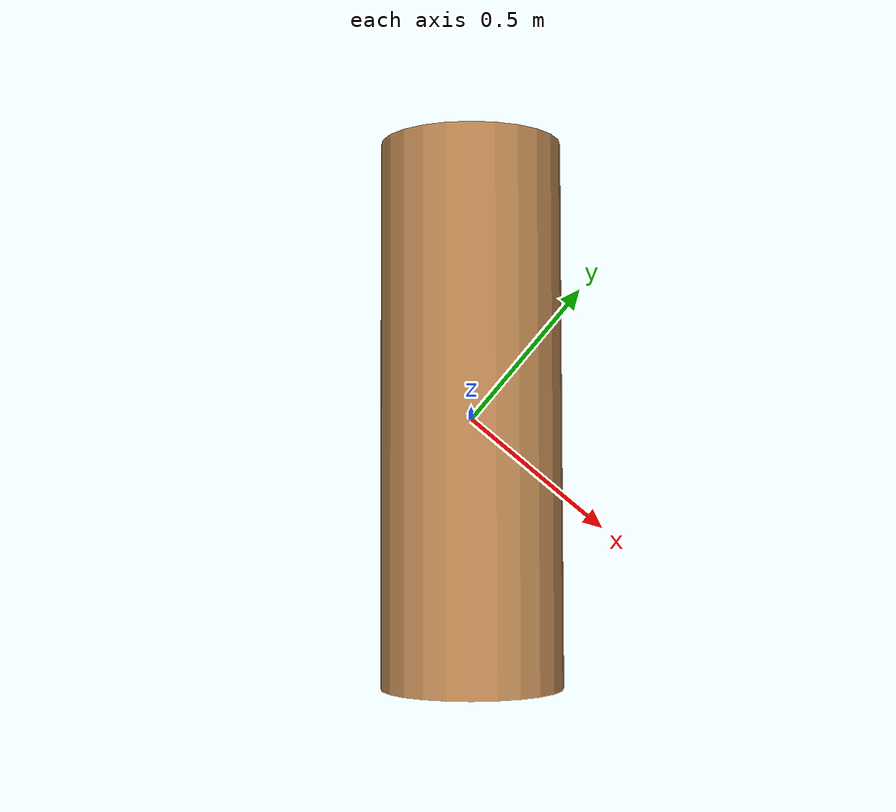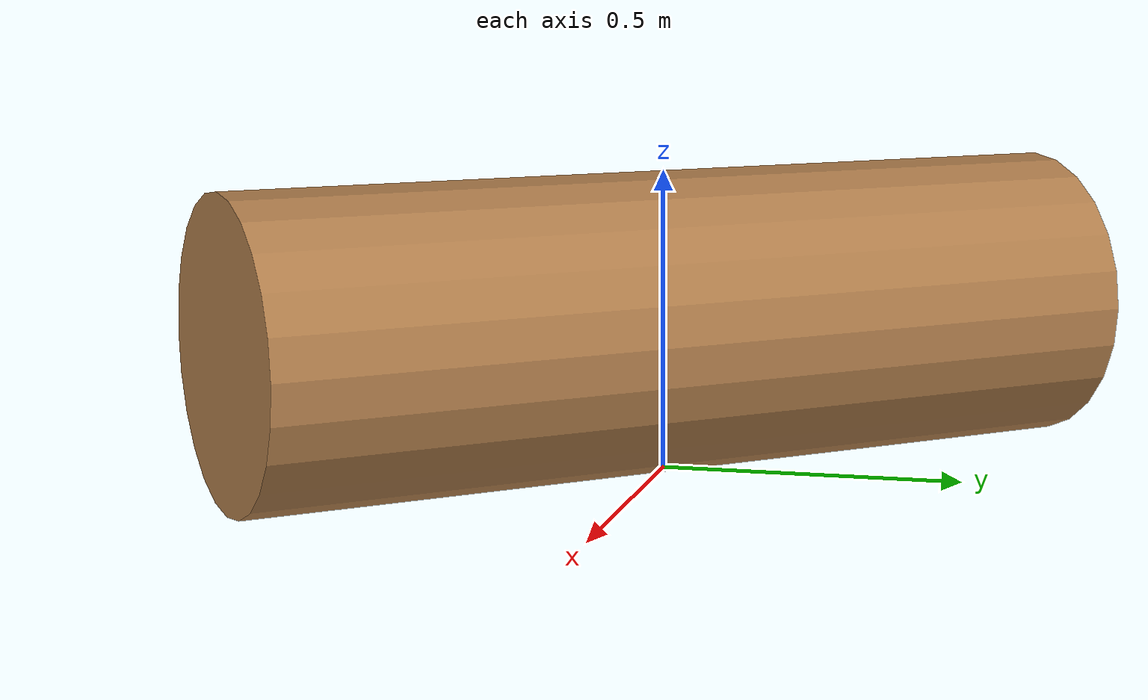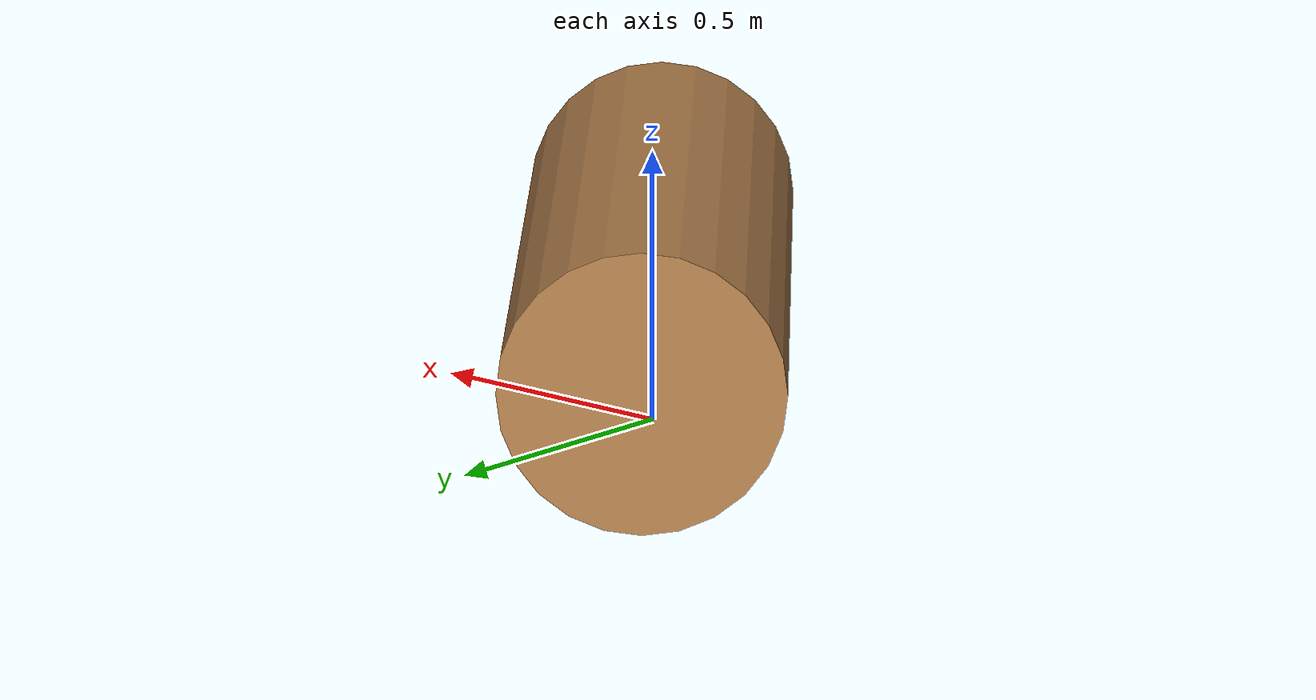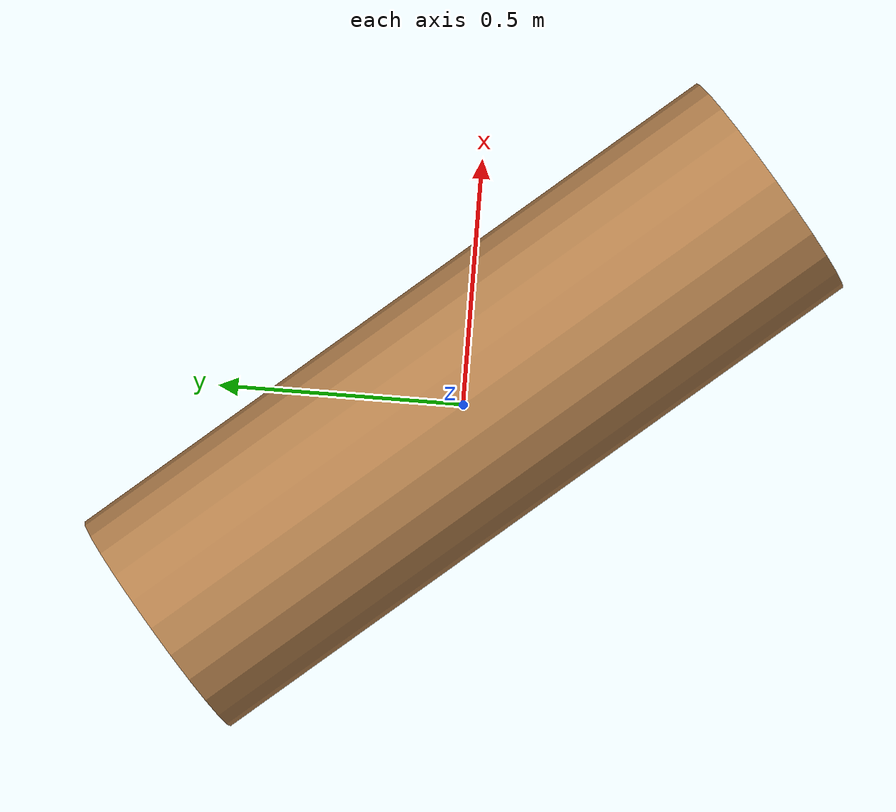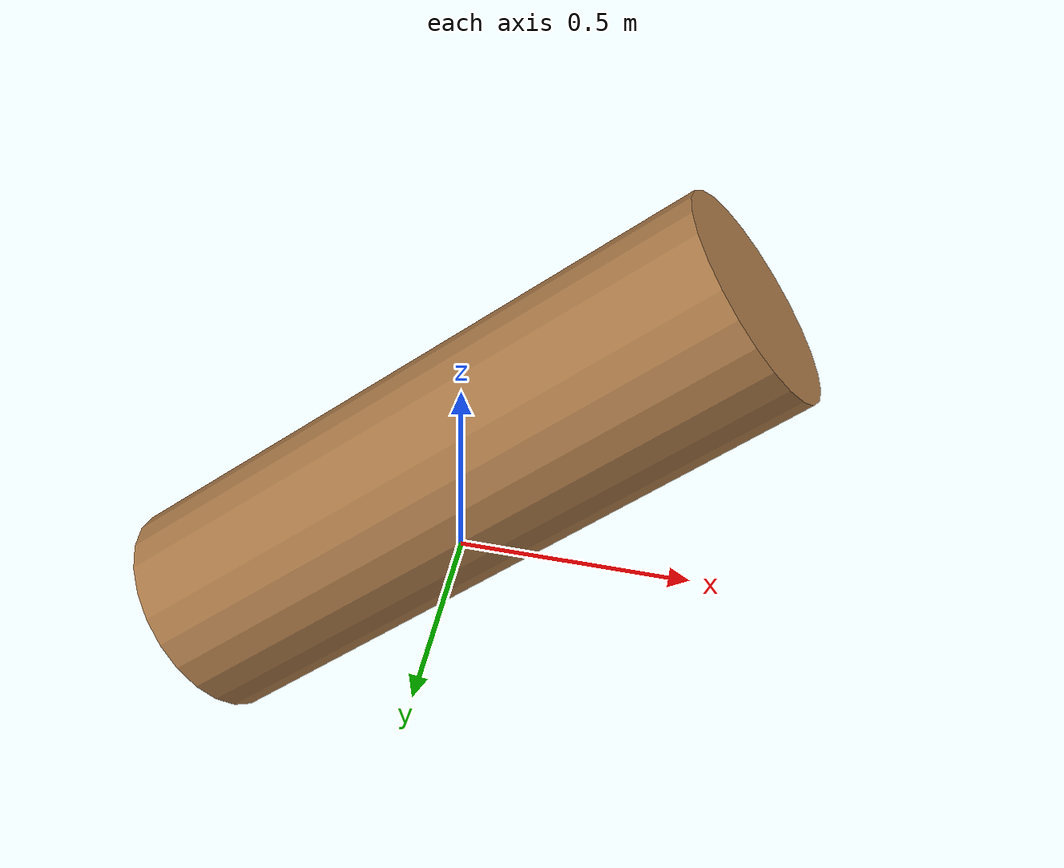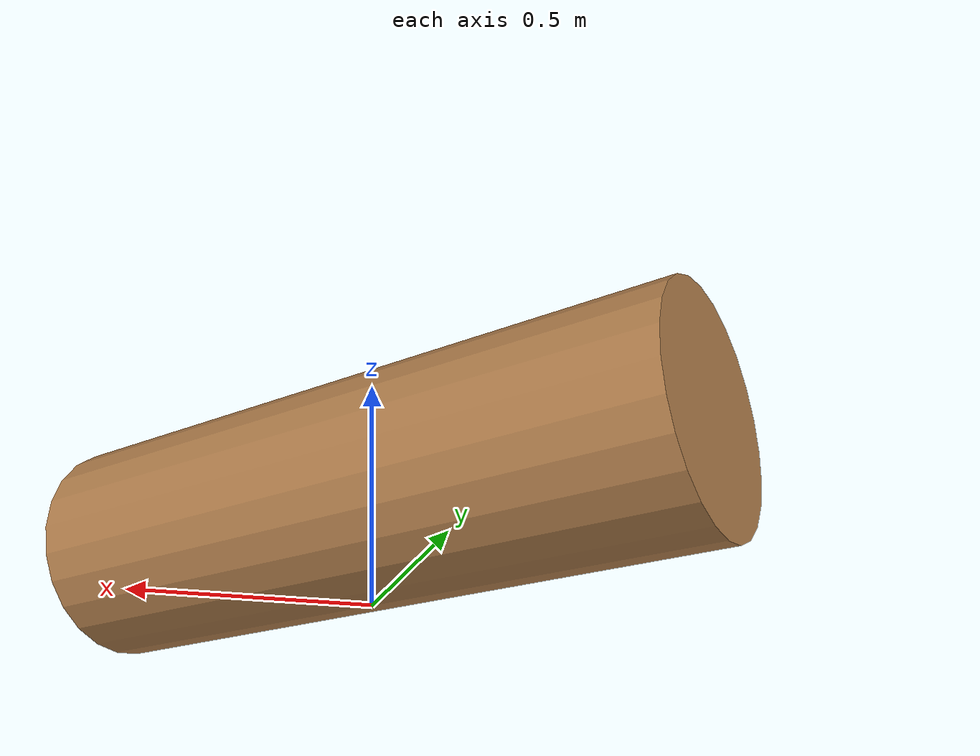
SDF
<?xml version="1.0" ?>

<sdf version="1.5">
  <model name="tronco">
    <static>true</static>
    <link name="link">
      <pose>0 0 0.25 1.57 0 0.7</pose>
      <collision name="collision">
        <geometry>
          <cylinder>
    		    <radius>0.1</radius>
    		    <length>1.5</length>
 		      </cylinder>
        </geometry>
        <surface>
          <friction>
            <ode>
              <mu>2</mu>
              <mu2>0.01</mu2>
            </ode>
          </friction>
        </surface>
      </collision>
      <visual name="visual">
        <geometry>
          <cylinder>
    		    <radius>0.25</radius>
    		    <length>1.5</length>
 		      </cylinder>
        </geometry>
        <material>
          <script>
          	<uri>model://materials/scripts</uri>
          	<uri>model://materials/textures</uri>
          	<name>wood</name>
          </script>
        </material>
      </visual>
    </link>
  </model>
</sdf>
